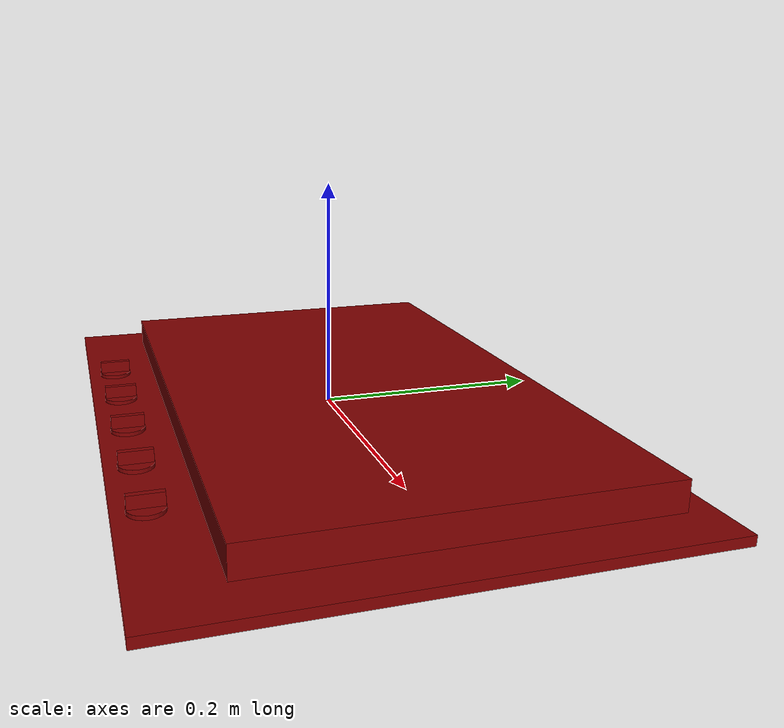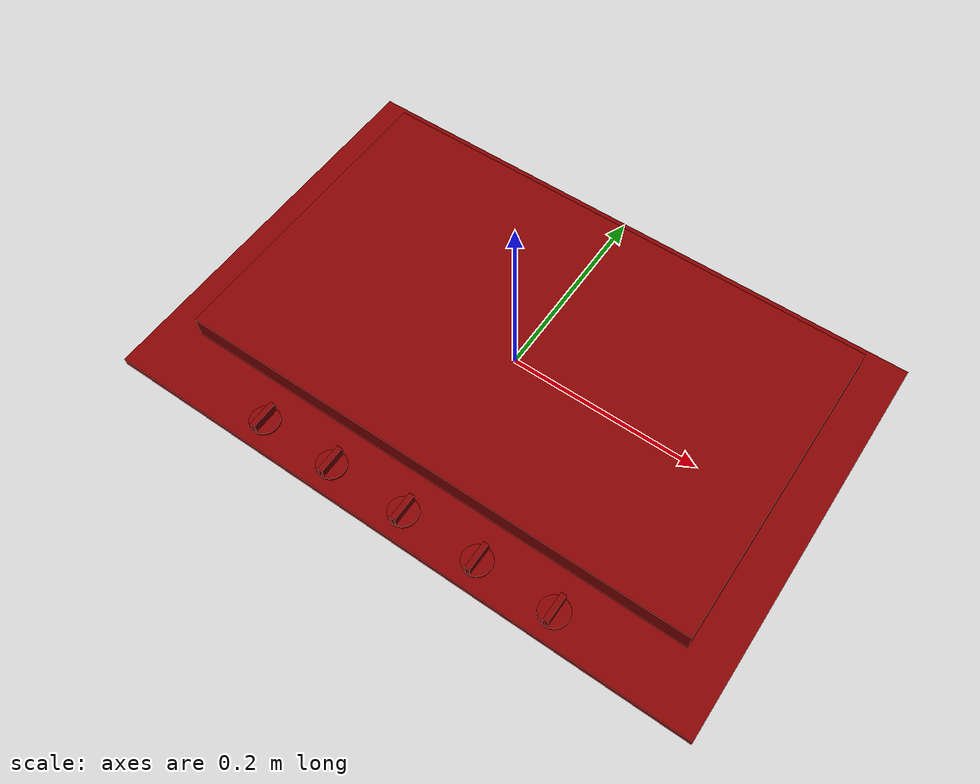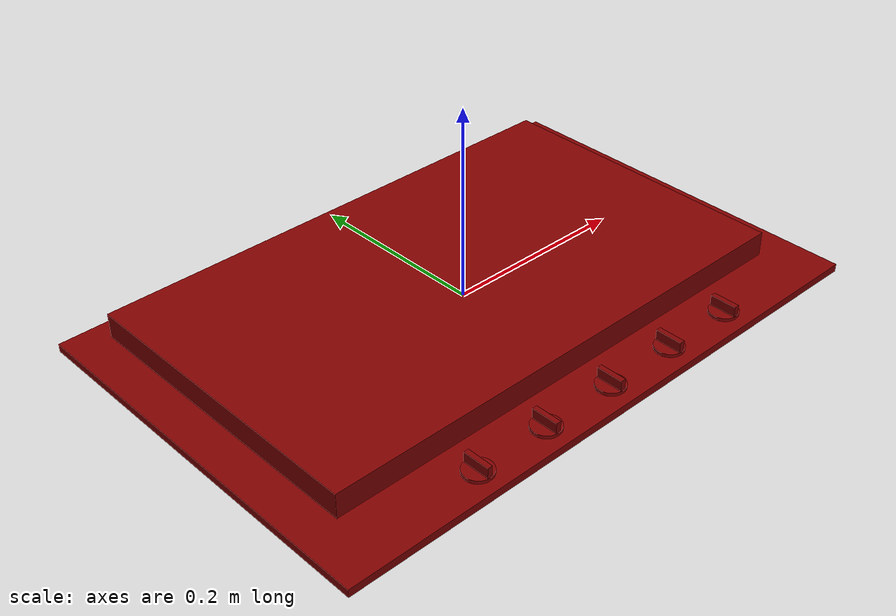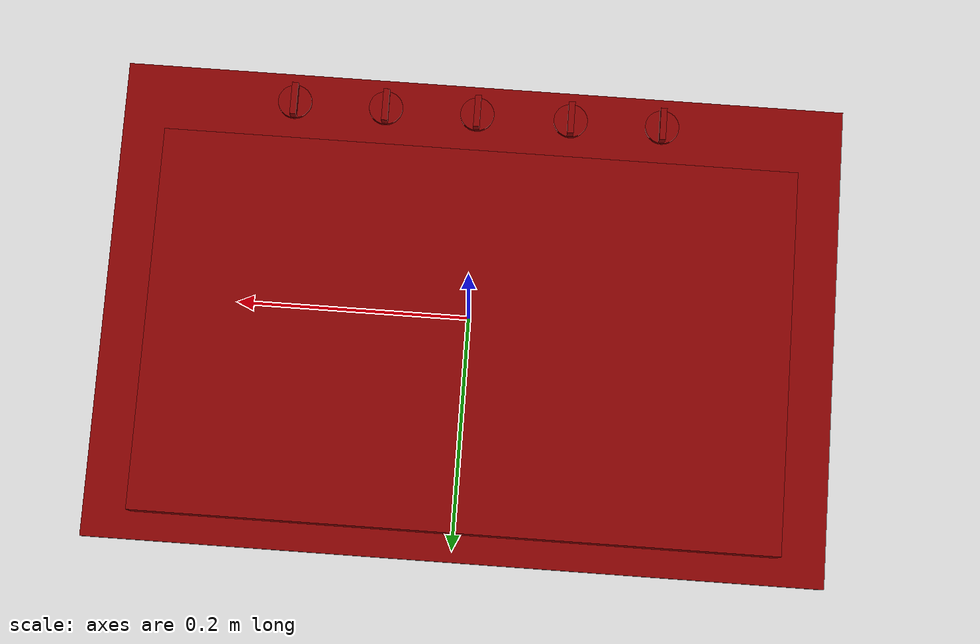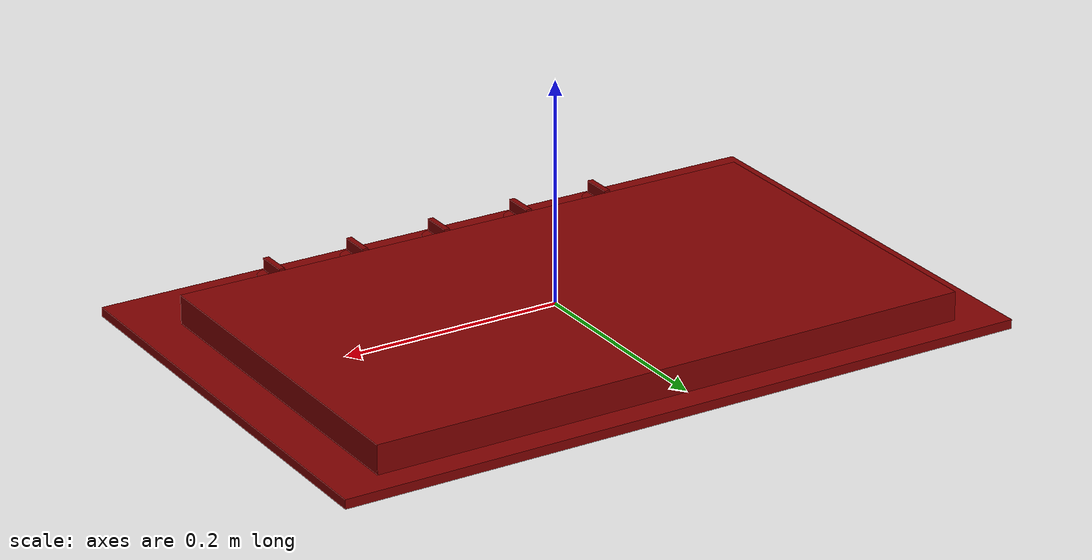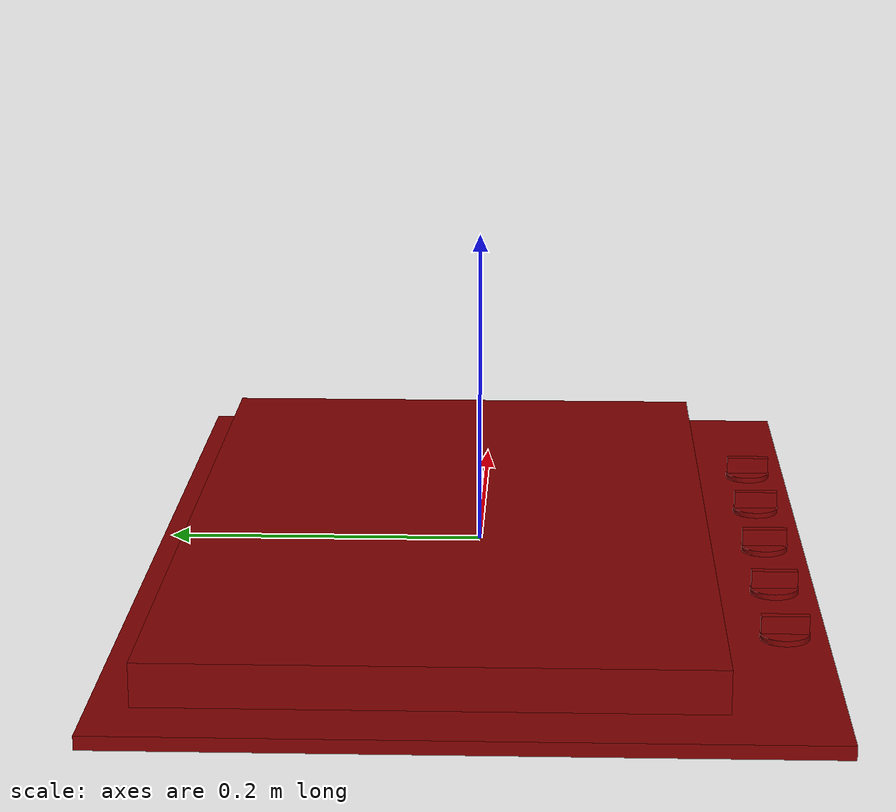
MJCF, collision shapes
<?xml version='1.0' encoding='UTF-8'?>
<mujoco model="model">
  <option timestep="0.002" gravity="0.0 0.0 -9.81"/>
  <compiler angle="radian"/>
  <asset>
    <mesh file="visuals/knob_center.obj" name="knob_center_vis"/>
    <mesh file="visuals/knob_front_left.obj" name="knob_front_left_vis"/>
    <mesh file="visuals/knob_front_right.obj" name="knob_front_right_vis"/>
    <mesh file="visuals/knob_rear_left.obj" name="knob_rear_left_vis"/>
    <mesh file="visuals/knob_rear_right.obj" name="knob_rear_right_vis"/>
    <mesh file="visuals/Body001.obj" name="Body001_vis"/>
    <texture file="visuals/T_BC001.png" name="Body001_material" type="2d"/>
    <material name="Body001_material" rgba="1 1 1 1.0" texture="Body001_material" shininess="1" specular="1"/>
    <texture file="visuals/T_BC001.png" name="knob_center_material" type="2d"/>
    <material name="knob_center_material" rgba="1 1 1 1.0" texture="knob_center_material" shininess="0.5" specular="0.5"/>
    <texture file="visuals/T_BC001.png" name="knob_front_left_material" type="2d"/>
    <material name="knob_front_left_material" rgba="1 1 1 1.0" texture="knob_front_left_material" shininess="0.5" specular="0.5"/>
    <texture file="visuals/T_BC001.png" name="knob_front_right_material" type="2d"/>
    <material name="knob_front_right_material" rgba="1 1 1 1.0" texture="knob_front_right_material" shininess="0.5" specular="0.5"/>
    <texture file="visuals/T_BC001.png" name="knob_rear_left_material" type="2d"/>
    <material name="knob_rear_left_material" rgba="1 1 1 1.0" texture="knob_rear_left_material" shininess="0.5" specular="0.5"/>
    <texture file="visuals/T_BC001.png" name="knob_rear_right_material" type="2d"/>
    <material name="knob_rear_right_material" rgba="1 1 1 1.0" texture="knob_rear_right_material" shininess="0.5" specular="0.5"/>
  </asset>
  <default>
    <default class="visual">
      <geom conaffinity="0" contype="0" group="1" type="mesh"/>
    </default>
    <default class="collision">
      <geom group="0" rgba="0.5 0 0 0.5"/>
    </default>
    <default class="spawn">
      <geom group="0" rgba="1 1 1 0.5" contype="0" conaffinity="0"/>
      <site group="0" rgba="1 1 1 0.5"/>
    </default>
    <default class="region">
      <geom group="1" conaffinity="0" contype="0" rgba="0 1 0 0"/>
    </default>
  </default>
  <worldbody>
    <body>
      <body name="object">
        <geom mesh="Body001_vis" type="mesh" solimp="0.998 0.998 0.001" solref="0.001 1" friction="0.95 0.3 0.1" class="visual" material="Body001_material"/>
        <geom class="collision" type="box" pos="0.00000025 0.00000019 -0.01302019" size="0.3178480863571167 0.20986172556877136 0.004170548170804977" quat="1.0 0.0 0.0 0.0"/>
        <geom class="collision" type="cylinder" pos="0.19083674 -0.06399424 -0.00030143" size="0.03142540156841278 0.008591441437602043" quat="1.0 0.0 0.0 0.0"/>
        <geom class="collision" type="cylinder" pos="-0.18975120 -0.06477514 -0.00004058" size="0.022993505001068115 0.006286231335252523" quat="1.0 0.0 0.0 0.0"/>
        <geom class="collision" type="cylinder" pos="0.19083674 0.10554731 0.00088561" size="0.04088771715760231 0.010118824429810047" quat="1.0 0.0 0.0 0.0"/>
        <geom class="collision" type="cylinder" pos="-0.00044233 0.01990356 -0.00006071" size="0.05173790454864502 0.008719885721802711" quat="1.0 0.0 0.0 0.0"/>
        <geom class="collision" type="cylinder" pos="-0.18983111 0.10617935 -0.00030143" size="0.03142540156841278 0.008591441437602043" quat="1.0 0.0 0.0 0.0"/>
        <geom class="collision" type="box" pos="-0.00000492 0.02023905 0.00418135" size="0.16585110127925873 0.27613264322280884 0.013009934686124325" quat="6.335025481084798e-15 0.7071067094802856 -0.7071068286895752 6.181723932741079e-08"/>
        <body name="knob_center">
          <joint axis="0.0 0.0 1.0" pos="0.00566280 -0.18409991 -0.00096861" limited="true" name="knob_center_joint" range="0.0 3.6651914291880923" type="hinge" damping="0.2" armature="0.01" frictionloss="1"/>
          <geom mesh="knob_center_vis" type="mesh" solimp="0.998 0.998 0.001" solref="0.001 1" friction="0.95 0.3 0.1" class="visual" material="knob_center_material"/>
          <geom class="collision" type="box" pos="0.00566280 -0.18409991 0.00140541" size="0.0027042331639677286 0.014226293191313744 0.005413280334323645" quat="1.0 0.0 0.0 0.0" name="knob_center_main" friction="100 0.5 0.01"/>
          <geom class="collision" type="cylinder" pos="0.00566280 -0.18409991 -0.00582825" size="0.014922698959708214 0.0017103550489991903" quat="1.0 0.0 0.0 0.0" friction="100 0.5 0.01"/>
        </body>
        <body name="knob_front_left">
          <joint axis="0.0 0.0 1.0" pos="-0.15813384 -0.18409991 -0.00096861" limited="true" name="knob_front_left_joint" range="0.0 3.6651914291880923" type="hinge" damping="0.2" armature="0.01" frictionloss="1"/>
          <geom mesh="knob_front_left_vis" type="mesh" solimp="0.998 0.998 0.001" solref="0.001 1" friction="0.95 0.3 0.1" class="visual" material="knob_front_left_material"/>
          <geom class="collision" type="cylinder" pos="-0.15813384 -0.18409991 -0.00582825" size="0.014922698959708214 0.0017103550489991903" quat="1.0 0.0 0.0 0.0" friction="100 0.5 0.01"/>
          <geom class="collision" type="box" pos="-0.15813384 -0.18409991 0.00140541" size="0.0027042331639677286 0.014226293191313744 0.005413280334323645" quat="1.0 0.0 0.0 0.0" name="knob_front_left_main" friction="100 0.5 0.01"/>
        </body>
        <body name="knob_front_right">
          <joint axis="0.0 0.0 1.0" pos="0.16750664 -0.18409991 -0.00096861" limited="true" name="knob_front_right_joint" range="0.0 3.6651914291880923" type="hinge" damping="0.2" armature="0.01" frictionloss="1"/>
          <geom mesh="knob_front_right_vis" type="mesh" solimp="0.998 0.998 0.001" solref="0.001 1" friction="0.95 0.3 0.1" class="visual" material="knob_front_right_material"/>
          <geom class="collision" type="cylinder" pos="0.16750664 -0.18409991 -0.00582825" size="0.014922698959708214 0.0017103550489991903" quat="1.0 0.0 0.0 0.0" friction="100 0.5 0.01"/>
          <geom class="collision" type="box" pos="0.16750666 -0.18409991 0.00140541" size="0.0027042331639677286 0.014226293191313744 0.005413280334323645" quat="1.0 0.0 0.0 0.0" name="knob_front_right_main" friction="100 0.5 0.01"/>
        </body>
        <body name="knob_rear_left">
          <joint axis="0.0 0.0 1.0" pos="-0.07713531 -0.18409991 -0.00096861" limited="true" name="knob_rear_left_joint" range="0.0 3.6651914291880923" type="hinge" damping="0.2" armature="0.01" frictionloss="1"/>
          <geom mesh="knob_rear_left_vis" type="mesh" solimp="0.998 0.998 0.001" solref="0.001 1" friction="0.95 0.3 0.1" class="visual" material="knob_rear_left_material"/>
          <geom class="collision" type="cylinder" pos="-0.07713531 -0.18409991 -0.00582825" size="0.014922698959708214 0.0017103550489991903" quat="1.0 0.0 0.0 0.0" friction="100 0.5 0.01"/>
          <geom class="collision" type="box" pos="-0.07713531 -0.18409991 0.00140541" size="0.0027042331639677286 0.014226293191313744 0.005413280334323645" quat="1.0 0.0 0.0 0.0" name="knob_rear_left_main" friction="100 0.5 0.01"/>
        </body>
        <body name="knob_rear_right">
          <joint axis="0.0 0.0 1.0" pos="0.08671914 -0.18409991 -0.00096861" limited="true" name="knob_rear_right_joint" range="0.0 3.6651914291880923" type="hinge" damping="0.2" armature="0.01" frictionloss="1"/>
          <geom mesh="knob_rear_right_vis" type="mesh" solimp="0.998 0.998 0.001" solref="0.001 1" friction="0.95 0.3 0.1" class="visual" material="knob_rear_right_material"/>
          <geom class="collision" type="cylinder" pos="0.08671914 -0.18409991 -0.00582825" size="0.014922698959708214 0.0017103550489991903" quat="1.0 0.0 0.0 0.0" friction="100 0.5 0.01"/>
          <geom class="collision" type="box" pos="0.08671914 -0.18409991 0.00140541" size="0.0027042331639677286 0.014226293191313744 0.005413280334323645" quat="1.0 0.0 0.0 0.0" name="knob_rear_right_main" friction="100 0.5 0.01"/>
        </body>
        <site type="cylinder" rgba="0.3 0.4 1 0.5" size="0.052473802119493484 0.01017662975937128" pos="0.00000470 0.01997722 0.00075054" name="burner_on_center"/>
        <site type="cylinder" rgba="0.3 0.4 1 0.5" size="0.03076311945915222 0.01017662975937128" pos="-0.18977519 0.10574367 0.00085381" name="burner_on_rear_left"/>
        <site type="cylinder" rgba="0.3 0.4 1 0.5" size="0.022523323073983192 0.010176630690693855" pos="-0.18962132 -0.06493006 0.00085381" name="burner_on_front_left"/>
        <site type="cylinder" rgba="0.3 0.4 1 0.5" size="0.04036003351211548 0.010176630690693855" pos="0.19044379 0.10559724 0.00085381" name="burner_on_rear_right"/>
        <site type="cylinder" rgba="0.3 0.4 1 0.5" size="0.030798397958278656 0.010176627896726131" pos="0.19049289 -0.06442403 0.00085381" name="burner_on_front_right"/>
        <site type="cylinder" rgba="0.5 0 0 0" size="0.052473802119493484 4.999999873689376e-05" pos="0.00000470 0.01997722 0.01752413" name="burner_center_place_site"/>
        <site type="cylinder" rgba="0.5 0 0 0" size="0.022523323073983192 4.999999873689376e-05" pos="-0.18962132 -0.06493006 0.01742087" name="burner_front_left_place_site"/>
        <site type="cylinder" rgba="0.5 0 0 0" size="0.030798397958278656 4.999999873689376e-05" pos="0.19049289 -0.06442403 0.01742087" name="burner_front_right_place_site"/>
        <site type="cylinder" rgba="0.5 0 0 0" size="0.03076311945915222 4.999999873689376e-05" pos="-0.18977519 0.10574367 0.01742087" name="burner_rear_left_place_site"/>
        <site type="cylinder" rgba="0.5 0 0 0" size="0.04036003351211548 4.999999873689376e-05" pos="0.19044379 0.10559724 0.01742087" name="burner_rear_right_place_site"/>
        <geom class="region" name="reg_main" type="box" pos="2.450000000098207e-07 1.899999999971369e-07 -0.013020215000000002" size="0.318848115 0.21086177 0.005170575"/>
      </body>
    </body>
  </worldbody>
  <actuator>
    <motor name="knob_center_joint_actuator" joint="knob_center_joint" gear="10"/>
    <motor name="knob_front_left_joint_actuator" joint="knob_front_left_joint" gear="10"/>
    <motor name="knob_front_right_joint_actuator" joint="knob_front_right_joint" gear="10"/>
    <motor name="knob_rear_left_joint_actuator" joint="knob_rear_left_joint" gear="10"/>
    <motor name="knob_rear_right_joint_actuator" joint="knob_rear_right_joint" gear="10"/>
  </actuator>
</mujoco>
